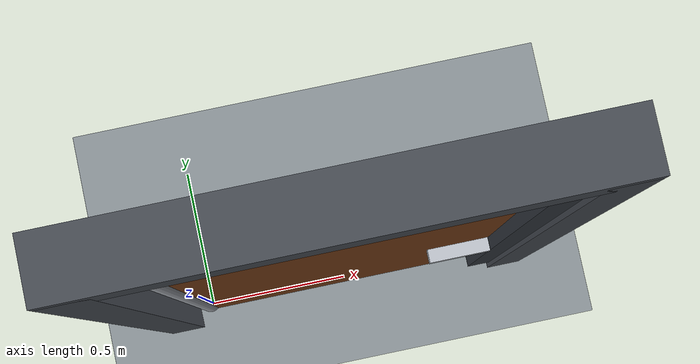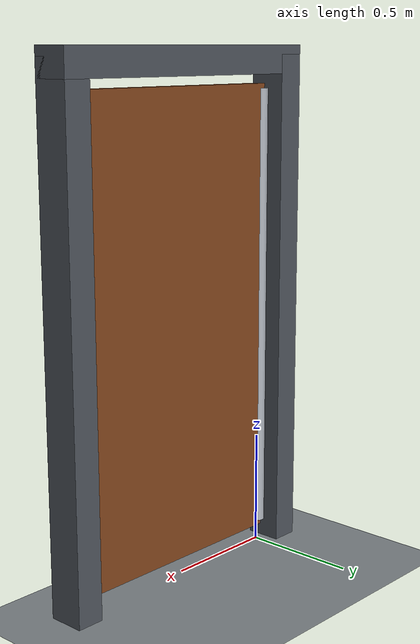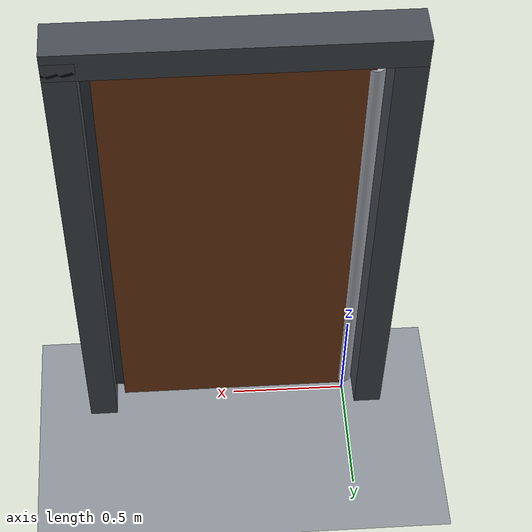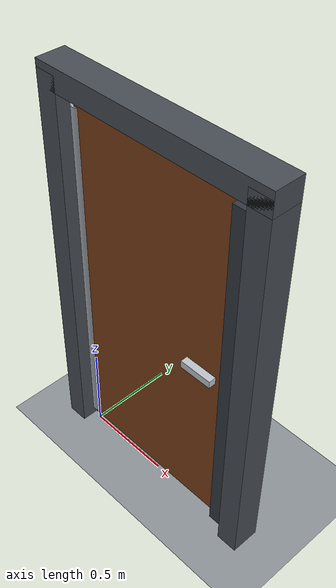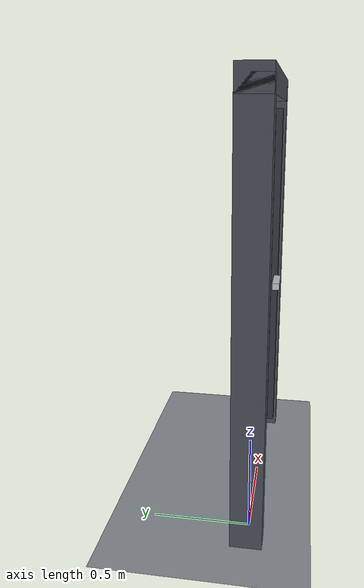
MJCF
<mujoco model="self_closing_door">
  <compiler angle="radian"/>
  <option timestep="0.002"/>

  <visual>
    <headlight ambient="0.35 0.35 0.35" diffuse="0.65 0.65 0.65"/>
  </visual>

  <worldbody>
    <light name="overhead_light" pos="0 -2 5" dir="0 0 -1"/>
    <camera name="overview" pos="3 -4 2.7" xyaxes="0.857 0.514 0 -0.173 0.288 0.942"/>

    <geom name="floor" type="plane" size="5 5 0.1" rgba="0.55 0.58 0.60 1" friction="0.8 0.01 0.001"/>
    <geom name="hinge_jamb" type="box" pos="-0.11 0 1.10" size="0.06 0.08 1.10" rgba="0.28 0.30 0.33 1"/>
    <geom name="latch_jamb" type="box" pos="1.10 0 1.10" size="0.06 0.08 1.10" rgba="0.28 0.30 0.33 1"/>
    <geom name="lintel" type="box" pos="0.495 0 2.18" size="0.665 0.08 0.06" rgba="0.28 0.30 0.33 1"/>
    <geom name="door_stop" type="box" pos="1.03 -0.045 1.08" size="0.07 0.02 1.00" rgba="0.20 0.22 0.25 1" friction="0.6 0.01 0.001" solref="0.008 1" solimp="0.95 0.99 0.001"/>

    <body name="door" pos="0 0 1.08">
      <joint name="hinge" type="hinge" pos="0 0 0" axis="0 0 1" limited="true" range="0 1.7" stiffness="20" springref="-0.04" damping="18" armature="0.01" solreflimit="0.008 1" solimplimit="0.95 0.99 0.001"/>
      <geom name="door_panel" type="box" pos="0.5 0 0" size="0.5 0.025 1.0" mass="10" rgba="0.48 0.25 0.10 1" friction="0.6 0.01 0.001" solref="0.008 1" solimp="0.95 0.99 0.001"/>
      <geom name="door_hinge_barrel" type="cylinder" pos="0 0 0" size="0.035 0.98" mass="0.05" rgba="0.65 0.67 0.70 1"/>
      <geom name="door_handle" type="box" pos="0.83 -0.065 0" size="0.09 0.02 0.02" mass="0.1" rgba="0.75 0.77 0.80 1"/>
    </body>
  </worldbody>

  <keyframe>
    <key name="start" qpos="1.2" qvel="0"/>
  </keyframe>
</mujoco>
